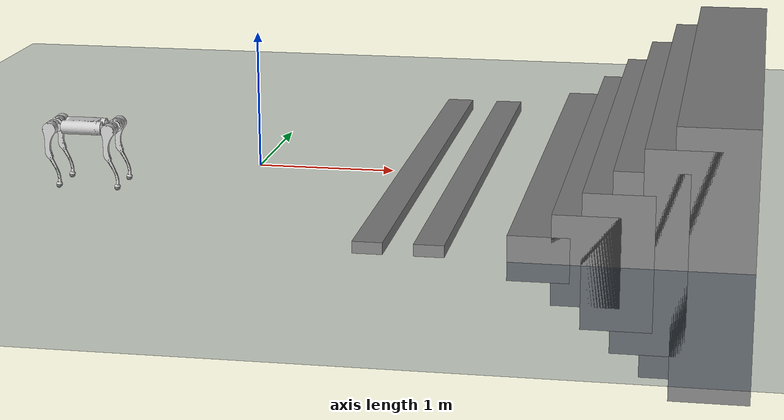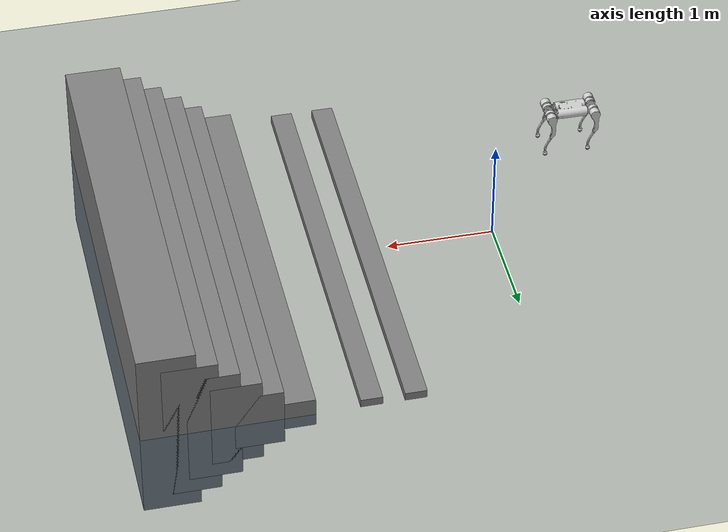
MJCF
<mujoco model="m2 scene">
  <include file="m2.xml"/>

  <statistic center="0 0 0.1" extent="0.8"/>

  <visual>
    <headlight diffuse="0.6 0.6 0.6" ambient="0.3 0.3 0.3" specular="0 0 0"/>
    <rgba haze="0.15 0.25 0.35 1"/>
    <global azimuth="-130" elevation="-20"/>
  </visual>

  <asset>
    <texture type="skybox" builtin="gradient" rgb1="0.3 0.5 0.7" rgb2="0 0 0" width="512" height="3072"/>
    <texture type="2d" name="groundplane" builtin="checker" mark="edge" rgb1="0.2 0.3 0.4" rgb2="0.1 0.2 0.3"
      markrgb="0.8 0.8 0.8" width="300" height="300"/>
    <material name="groundplane" texture="groundplane" texuniform="true" texrepeat="5 5" reflectance="0.2"/>
  </asset>

  <worldbody>
    <light pos="0 0 1.5" dir="0 0 -1" directional="true"/>
    <geom name="floor" size="0 0 0.05" type="plane" material="groundplane"/>

    <geom pos="1.2 0 0.04" type="box"  size="0.1 2 0.04" quat="1.0 0 0 0"/>
    <geom pos="1.6 0 0.04" type="box"  size="0.1 2 0.04" quat="1.0 0 0 0"/>

    <geom pos="2.3 0 0.02" type="box"  size="0.2 2 0.15" quat="1.0 0 0 0"/>
    <geom pos="2.6 0 0.02" type="box"  size="0.22 2 0.3" quat="1.0 0 0 0"/>
    <geom pos="2.8 0 0.02" type="box"  size="0.23 2 0.45" quat="1.0 0 0 0"/>
    <geom pos="3 0 0.02" type="box"  size="0.24 2 0.6" quat="1.0 0 0 0"/>
    <geom pos="3.2 0 0.02" type="box"  size="0.25 2 0.75" quat="1.0 0 0 0"/>
    <geom pos="3.4 0 0.02" type="box"  size="0.26 2 0.9" quat="1.0 0 0 0"/>
  </worldbody>
</mujoco>

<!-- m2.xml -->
<mujoco model="m2">
  <compiler angle="radian" meshdir="assets" autolimits="true" />

  <option cone="elliptic" impratio="100" />

  <default>
    <default class="m2">
      <geom friction="0.4" margin="0.001" condim="1" />
      <joint axis="0 1 0" damping="0.1" armature="0.01" frictionloss="0.2" />
      <motor ctrlrange="-23.7 23.7" />
      <default class="abduction">
        <joint axis="1 0 0" range="-1.0472 1.0472" />
      </default>
      <default class="hip">
        <default class="front_hip">
          <joint range="-1.5708 3.4907" />
        </default>
        <default class="back_hip">
          <joint range="-0.5236 4.5379" />
        </default>
      </default>
      <default class="knee">
        <joint range="-2.7227 -0.83776" />
        <motor ctrlrange="-45.43 45.43" />
      </default>
      <default class="visual">
        <geom type="mesh" contype="0" conaffinity="0" group="2" />
      </default>
      <default class="collision">
        <geom group="3" />
        <default class="foot">
          <geom size="0.022" pos="-0.002 0 -0.213" priority="1" condim="6"
            friction="0.4 0.02 0.01" />
        </default>
      </default>
    </default>
  </default>

  <asset>
    <mesh name="base" file="base.STL" />
    <mesh name="FL_hip" file="FL_hip.STL" />
    <mesh name="FL_thigh" file="FL_thigh.STL" />
    <mesh name="FL_calf" file="FL_calf.STL" />
    <mesh name="FL_foot" file="FL_foot.STL" />
    <mesh name="FR_hip" file="FR_hip.STL" />
    <mesh name="FR_thigh" file="FR_thigh.STL" />
    <mesh name="FR_calf" file="FR_calf.STL" />
    <mesh name="FR_foot" file="FR_foot.STL" />
    <mesh name="RL_hip" file="RL_hip.STL" />
    <mesh name="RL_thigh" file="RL_thigh.STL" />
    <mesh name="RL_calf" file="RL_calf.STL" />
    <mesh name="RL_foot" file="RL_foot.STL" />
    <mesh name="RR_hip" file="RR_hip.STL" />
    <mesh name="RR_thigh" file="RR_thigh.STL" />
    <mesh name="RR_calf" file="RR_calf.STL" />
    <mesh name="RR_foot" file="RR_foot.STL" />

    <texture name="texplane" type="2d" builtin="checker" rgb1=".2 .3 .4" rgb2=".1 0.15 0.2"
      width="512" height="512" mark="cross" markrgb=".8 .8 .8" />
    <texture name="texplane2" type="2d" builtin="checker" rgb1="1 0.3137 0.1843"
      rgb2="0.0 0.30196 0.38039" width="512" height="512" mark="cross" markrgb=".8 .8 .8" />

    <material name="matplane" reflectance="0." texture="texplane" texrepeat="1 1" texuniform="true" />
    <material name="matplane2" reflectance="0.1" texture="texplane2" texrepeat="1 1"
      texuniform="true" />

  </asset>

  <worldbody>
    <body name="base" pos="-1 -1 0.5">
      <joint name="float_base" type="free" />
      <inertial pos="-0.00080643 1.2699e-05 0.0068848"
        quat="0.000177577 0.707181 -0.00010045 0.707032" mass="5.096"
        diaginertia="0.0859766 0.0721799 0.0205523" />
      <geom type="mesh" contype="0" conaffinity="0" group="1" density="0" rgba="0.8 0.8 0.8 1"
        mesh="base" /> <!-- 灰色base -->
      <site name='imu' size='0.01' pos='0.0 0 0.0' quat='1 0 0 0' />

      <body name="FL_hip" pos="0.14991 0.052019 0.00695">
        <inertial pos="0.0554688 -0.000383307 -1.59153e-12"
          quat="0.517747 0.517747 0.481599 0.481599" mass="0.7392"
          diaginertia="0.00083204 0.0006045 0.00047956" />
        <joint name="FL_hip_joint" pos="0 0 0" axis="1 0 0" range="-1.3 1.3" limited="true"
          damping="0.1" armature="0.01" frictionloss="0.2" />
        <geom type="mesh" contype="0" conaffinity="0" group="1" density="0" rgba="0.8 0.8 0.8 1"
          mesh="FL_hip" />
        <geom size="0.05 0.02" pos="0.06 0 0" quat="0.707107 0.707107 0 0" type="cylinder"
          rgba="1 1 1 1" group="3" />
        <body name="FL_thigh" pos="0.06 0.0245 0">
          <inertial pos="-0.00184828 0.034677 -0.017571"
            quat="0.730209 0.0881597 -0.0328039 0.676718" mass="1.042"
            diaginertia="0.00337782 0.00317834 0.00082994" />
          <joint name="FL_thigh_joint" pos="0 0 0" axis="0 -1 0" range="-3 3" limited="true"
            damping="0.1" armature="0.01" frictionloss="0.2" />
          <geom type="mesh" contype="0" conaffinity="0" group="1" density="0" rgba="0.8 0.8 0.8 1"
            mesh="FL_thigh" />
          <geom size="0.05 0.01225 0.02" pos="0 0.06 -0.08" quat="0.707107 0 0.707107 0" type="box"
            rgba="1 1 1 1" group="3" />
          <body name="FL_calf" pos="0.0025 0.0515 -0.19998">
            <inertial pos="0.0353151 0.00700261 -0.109195"
              quat="0.700182 -0.099174 -0.0992058 0.700048" mass="0.17855"
              diaginertia="0.00121341 0.00120336 2.10023e-05" />
            <joint name="FL_calf_joint" pos="0 0 0" axis="0 -1 0" range="0.6 2.5" limited="true"
              damping="0.1" armature="0.01" frictionloss="0.2" />
            <geom type="mesh" contype="0" conaffinity="0" group="1" density="0" rgba="0.8 0.8 0.8 1"
              mesh="FL_calf" />
            <geom size="0.011 0.1" pos="0.025 0.007 -0.09" quat="0.993956 0 -0.109778 0"
              type="cylinder" rgba="1 1 1 1" group="3" />
            <geom pos="0.049212 0.0070082 -0.21605" type="mesh" contype="0" conaffinity="0"
              group="1" density="0" rgba="0.5 0.5 0.5 1" mesh="FL_foot" />
            <geom size="0.022" pos="0.052212 0.0070082 -0.19605" rgba="1 1 1 1" group="3" />
          </body>
        </body>
      </body>

      <body name="FR_hip" pos="0.14991 -0.052065 0.006915">
        <inertial pos="0.0554688 0.000383307 1.59155e-12" quat="0.481599 0.481599 0.517747 0.517747"
          mass="0.7392" diaginertia="0.00083204 0.0006045 0.00047956" />
        <joint name="FR_hip_joint" pos="0 0 0" axis="1 0 0" range="-1.3 1.3" limited="true"
          damping="0.1" armature="0.01" frictionloss="0.2" />
        <geom type="mesh" contype="0" conaffinity="0" group="1" density="0" rgba="0.8 0.8 0.8 1"
          mesh="FR_hip" />
        <geom size="0.05 0.02" pos="0.06 0 0" quat="0.707107 0.707107 0 0" type="cylinder"
          rgba="1 1 1 1" group="3" />
        <body name="FR_thigh" pos="0.06 -0.0245 0">
          <inertial pos="-0.00197044 -0.0355399 -0.0175833"
            quat="0.674259 -0.0327297 0.094253 0.731724" mass="1.042"
            diaginertia="0.00332563 0.00314346 0.00085011" />
          <joint name="FR_thigh_joint" pos="0 0 0" axis="0 -1 0" range="-3 3" limited="true"
            damping="0.1" armature="0.01" frictionloss="0.2" />
          <geom type="mesh" contype="0" conaffinity="0" group="1" density="0" rgba="0.8 0.8 0.8 1"
            mesh="FR_thigh" />
          <geom size="0.05 0.01225 0.02" pos="0 -0.06 -0.08" quat="0.707107 0 0.707107 0" type="box"
            rgba="1 1 1 1" group="3" />
          <body name="FR_calf" pos="0.0025 -0.0485 -0.19998">
            <inertial pos="0.0353151 -0.0107474 -0.109195"
              quat="0.70018 -0.0991745 -0.0992053 0.70005" mass="0.17855"
              diaginertia="0.00121341 0.00120336 2.10023e-05" />
            <joint name="FR_calf_joint" pos="0 0 0" axis="0 -1 0" range="0.6 2.5" limited="true"
              damping="0.1" armature="0.01" frictionloss="0.2" />
            <geom type="mesh" contype="0" conaffinity="0" group="1" density="0" rgba="0.8 0.8 0.8 1"
              mesh="FR_calf" />
            <geom size="0.011 0.1" pos="0.025 -0.01 -0.09" quat="0.993956 0 -0.109778 0"
              type="cylinder" rgba="1 1 1 1" group="3" />
            <geom pos="0.049212 -0.010742 -0.21605" type="mesh" contype="0" conaffinity="0"
              group="1" density="0" rgba="0.5 0.5 0.5 1" mesh="FR_foot" />
            <geom size="0.022" pos="0.052212 -0.010742 -0.19605" rgba="1 1 1 1" group="3" />
          </body>
        </body>
      </body>

      <body name="RL_hip" pos="-0.15009 0.052104 0.006915">
        <inertial pos="-0.0554688 -0.000383307 1.59163e-12"
          quat="0.481599 0.481599 0.517747 0.517747" mass="0.7392"
          diaginertia="0.00083204 0.0006045 0.00047956" />
        <joint name="RL_hip_joint" pos="0 0 0" axis="1 0 0" range="-1.3 1.3" limited="true"
          damping="0.1" armature="0.01" frictionloss="0.2" />
        <geom type="mesh" contype="0" conaffinity="0" group="1" density="0" rgba="0.8 0.8 0.8 1"
          mesh="RL_hip" />
        <geom size="0.05 0.02" pos="-0.06 0 0" quat="0.707107 0.707107 0 0" type="cylinder"
          rgba="1 1 1 1" group="3" />
        <body name="RL_thigh" pos="-0.06 0.0245 0">
          <inertial pos="-0.00184828 0.034677 -0.017571"
            quat="0.730209 0.0881597 -0.0328039 0.676718" mass="1.042"
            diaginertia="0.00337782 0.00317834 0.00082994" />
          <joint name="RL_thigh_joint" pos="0 0 0" axis="0 -1 0" range="-3 3" limited="true"
            damping="0.1" armature="0.01" frictionloss="0.2" />
          <geom type="mesh" contype="0" conaffinity="0" group="1" density="0" rgba="0.8 0.8 0.8 1"
            mesh="RL_thigh" />
          <geom size="0.05 0.01225 0.02" pos="0 0.06 -0.08" quat="0.707107 0 0.707107 0" type="box"
            rgba="1 1 1 1" group="3" />
          <body name="RL_calf" pos="0.0025 0.0515 -0.19998">
            <inertial pos="0.0353151 0.0070026 -0.109195"
              quat="0.700182 -0.0991741 -0.0992058 0.700048" mass="0.17855"
              diaginertia="0.00121341 0.00120336 2.10023e-05" />
            <joint name="RL_calf_joint" pos="0 0 0" axis="0 -1 0" range="0.6 2.5" limited="true"
              damping="0.1" armature="0.01" frictionloss="0.2" />
            <geom type="mesh" contype="0" conaffinity="0" group="1" density="0" rgba="0.8 0.8 0.8 1"
              mesh="RL_calf" />
            <geom size="0.011 0.1" pos="0.025 0.007 -0.09" quat="0.993956 0 -0.109778 0"
              type="cylinder" rgba="1 1 1 1" group="3" />
            <geom pos="0.049212 0.0070082 -0.21605" type="mesh" contype="0" conaffinity="0"
              group="1" density="0" rgba="0.5 0.5 0.5 1" mesh="RL_foot" />
            <geom size="0.022" pos="0.052212 0.0070082 -0.19605" rgba="1 1 1 1" group="3" />
          </body>
        </body>
      </body>

      <body name="RR_hip" pos="-0.15009 -0.051981 0.00695">
        <inertial pos="-0.0554688 0.000383307 -1.59152e-12"
          quat="0.517747 0.517747 0.481599 0.481599" mass="0.7392"
          diaginertia="0.00083204 0.0006045 0.00047956" />
        <joint name="RR_hip_joint" pos="0 0 0" axis="1 0 0" range="-1.3 1.3" limited="true"
          damping="0.1" armature="0.01" frictionloss="0.2" />
        <geom type="mesh" contype="0" conaffinity="0" group="1" density="0" rgba="0.8 0.8 0.8 1"
          mesh="RR_hip" />
        <geom size="0.05 0.02" pos="-0.06 0 0" quat="0.707107 0.707107 0 0" type="cylinder"
          rgba="1 1 1 1" group="3" />
        <body name="RR_thigh" pos="-0.06 -0.0245 0">
          <inertial pos="-0.00197044 -0.0355399 -0.0175833"
            quat="0.674259 -0.0327297 0.094253 0.731724" mass="1.042"
            diaginertia="0.00332563 0.00314346 0.00085011" />
          <joint name="RR_thigh_joint" pos="0 0 0" axis="0 -1 0" range="-3 3" limited="true"
            damping="0.1" armature="0.01" frictionloss="0.2" />
          <geom type="mesh" contype="0" conaffinity="0" group="1" density="0" rgba="0.8 0.8 0.8 1"
            mesh="RR_thigh" />
          <geom size="0.05 0.01225 0.02" pos="0 -0.06 -0.08" quat="0.707107 0 0.707107 0" type="box"
            rgba="1 1 1 1" group="3" />
          <body name="RR_calf" pos="0.0025 -0.0485 -0.19998">
            <inertial pos="0.0353151 -0.0107474 -0.109195"
              quat="0.70018 -0.0991745 -0.0992053 0.70005" mass="0.17855"
              diaginertia="0.00121341 0.00120336 2.10023e-05" />
            <joint name="RR_calf_joint" pos="0 0 0" axis="0 -1 0" range="0.6 2.5" limited="true"
              damping="0.1" armature="0.01" frictionloss="0.2" />
            <geom type="mesh" contype="0" conaffinity="0" group="1" density="0" rgba="0.8 0.8 0.8 1"
              mesh="RR_calf" />
            <geom size="0.011 0.1" pos="0.025 -0.01 -0.09" quat="0.993956 0 -0.109778 0"
              type="cylinder" rgba="1 1 1 1" group="3" />
            <geom pos="0.049212 -0.010742 -0.21605" type="mesh" contype="0" conaffinity="0"
              group="1" density="0" rgba="0.5 0.5 0.5 1" mesh="RR_foot" />
            <geom size="0.022" pos="0.052212 -0.010742 -0.19605" rgba="1 1 1 1" group="3" />
          </body>
        </body>
      </body>
    </body>
  </worldbody>

  <actuator>

    <motor name="FL_hip_joint" joint="FL_hip_joint" gear="1" ctrllimited="true" ctrlrange="-12 12" />
    <motor name="FL_thigh_joint" joint="FL_thigh_joint" gear="1" ctrllimited="true" ctrlrange="-12 12" />
    <motor name="FL_calf_joint" joint="FL_calf_joint" gear="1" ctrllimited="true" ctrlrange="-12 12" />

    <motor name="FR_hip_joint" joint="FR_hip_joint" gear="1" ctrllimited="true" ctrlrange="-12 12" />
    <motor name="FR_thigh_joint" joint="FR_thigh_joint" gear="1" ctrllimited="true" ctrlrange="-12 12" />
    <motor name="FR_calf_joint" joint="FR_calf_joint" gear="1" ctrllimited="true" ctrlrange="-12 12" />

    <motor name="RL_hip_joint" joint="RL_hip_joint" gear="1" ctrllimited="true" ctrlrange="-12 12" />
    <motor name="RL_thigh_joint" joint="RL_thigh_joint" gear="1" ctrllimited="true" ctrlrange="-12 12" />
    <motor name="RL_calf_joint" joint="RL_calf_joint" gear="1" ctrllimited="true" ctrlrange="-12 12" />

    <motor name="RR_hip_joint" joint="RR_hip_joint" gear="1" ctrllimited="true" ctrlrange="-12 12" />
    <motor name="RR_thigh_joint" joint="RR_thigh_joint" gear="1" ctrllimited="true" ctrlrange="-12 12" />
    <motor name="RR_calf_joint" joint="RR_calf_joint" gear="1" ctrllimited="true" ctrlrange="-12 12" />
  </actuator>

  <sensor>

    <actuatorpos name='FL_hip_joint_p' actuator='FL_hip_joint' user='13' />
    <actuatorpos name='FL_thigh_joint_p' actuator='FL_thigh_joint' user='13' />
    <actuatorpos name='FL_calf_joint_p' actuator='FL_calf_joint' user='13' />
    <actuatorpos name='FR_hip_joint_p' actuator='FR_hip_joint' user='13' />
    <actuatorpos name='FR_thigh_joint_p' actuator='FR_thigh_joint' user='13' />
    <actuatorpos name='FR_calf_joint_p' actuator='FR_calf_joint' user='13' />
    <actuatorpos name='RL_hip_joint_p' actuator='RL_hip_joint' user='13' />
    <actuatorpos name='RL_thigh_joint_p' actuator='RL_thigh_joint' user='13' />
    <actuatorpos name='RL_calf_joint_p' actuator='RL_calf_joint' user='13' />
    <actuatorpos name='RR_hip_joint_p' actuator='RR_hip_joint' user='13' />
    <actuatorpos name='RR_thigh_joint_p' actuator='RR_thigh_joint' user='13' />
    <actuatorpos name='RR_calf_joint_p' actuator='RR_calf_joint' user='13' />

    <actuatorvel name='FL_hip_joint_v' actuator='FL_hip_joint' user='13' />
    <actuatorvel name='FL_thigh_joint_v' actuator='FL_thigh_joint' user='13' />
    <actuatorvel name='FL_calf_joint_v' actuator='FL_calf_joint' user='13' />
    <actuatorvel name='FR_hip_joint_v' actuator='FR_hip_joint' user='13' />
    <actuatorvel name='FR_thigh_joint_v' actuator='FR_thigh_joint' user='13' />
    <actuatorvel name='FR_calf_joint_v' actuator='FR_calf_joint' user='13' />
    <actuatorvel name='RL_hip_joint_v' actuator='RL_hip_joint' user='13' />
    <actuatorvel name='RL_thigh_joint_v' actuator='RL_thigh_joint' user='13' />
    <actuatorvel name='RL_calf_joint_v' actuator='RL_calf_joint' user='13' />
    <actuatorvel name='RR_hip_joint_v' actuator='RR_hip_joint' user='13' />
    <actuatorvel name='RR_thigh_joint_v' actuator='RR_thigh_joint' user='13' />
    <actuatorvel name='RR_calf_joint_v' actuator='RR_calf_joint' user='13' />

    <actuatorfrc name='FL_hip_joint_f' actuator='FL_hip_joint' user='13' noise='1e-3' />
    <actuatorfrc name='FL_thigh_joint_f' actuator='FL_thigh_joint' user='13' noise='1e-3' />
    <actuatorfrc name='FL_calf_joint_f' actuator='FL_calf_joint' user='13' noise='1e-3' />
    <actuatorfrc name='FR_hip_joint_f' actuator='FR_hip_joint' user='13' noise='1e-3' />
    <actuatorfrc name='FR_thigh_joint_f' actuator='FR_thigh_joint' user='13' noise='1e-3' />
    <actuatorfrc name='FR_calf_joint_f' actuator='FR_calf_joint' user='13' noise='1e-3' />
    <actuatorfrc name='RL_hip_joint_f' actuator='RL_hip_joint' user='13' noise='1e-3' />
    <actuatorfrc name='RL_thigh_joint_f' actuator='RL_thigh_joint' user='13' noise='1e-3' />
    <actuatorfrc name='RL_calf_joint_f' actuator='RL_calf_joint' user='13' noise='1e-3' />
    <actuatorfrc name='RR_hip_joint_f' actuator='RR_hip_joint' user='13' noise='1e-3' />
    <actuatorfrc name='RR_thigh_joint_f' actuator='RR_thigh_joint' user='13' noise='1e-3' />
    <actuatorfrc name='RR_calf_joint_f' actuator='RR_calf_joint' user='13' noise='1e-3' />

    <framequat name='orientation' objtype='site' noise='0.001' objname='imu' />
    <gyro name='angular-velocity' site='imu' noise='0.005' cutoff='34.9' />
    <framepos name='position' objtype='site' noise='0.001' objname='imu' />
    <velocimeter name='linear-velocity' site='imu' noise='0.001' cutoff='30' />
    <accelerometer name='linear-acceleration' site='imu' noise='0.005' cutoff='157' />
    <magnetometer name='magnetometer' site='imu' />
  </sensor>

  <keyframe>
    <key name="home" qpos="0 0 0.27 1 0 0 0 0 0.9 -1.8 0 0.9 -1.8 0 0.9 -1.8 0 0.9 -1.8"
      ctrl="0 0.9 -1.8 0 0.9 -1.8 0 0.9 -1.8 0 0.9 -1.8" />
  </keyframe>
</mujoco>
